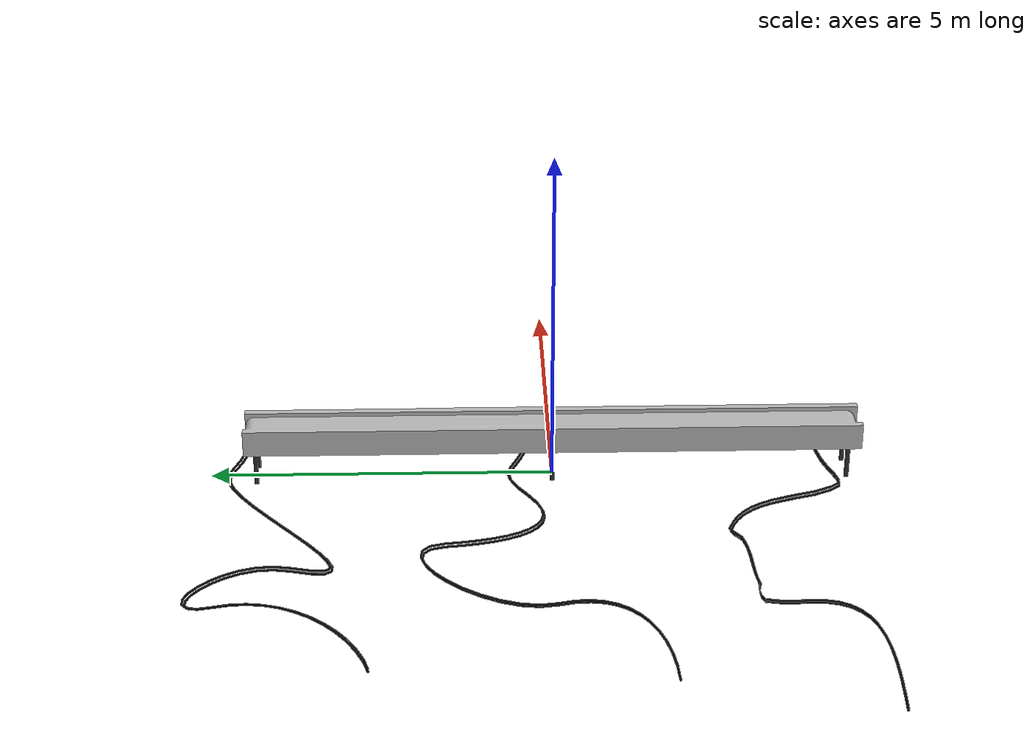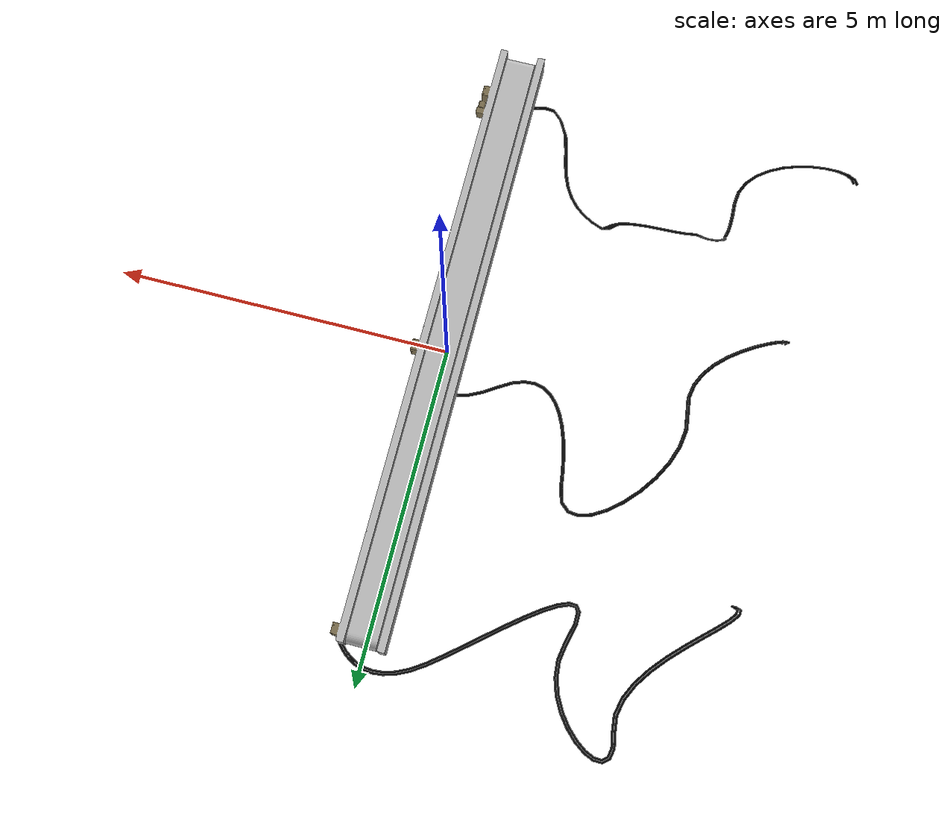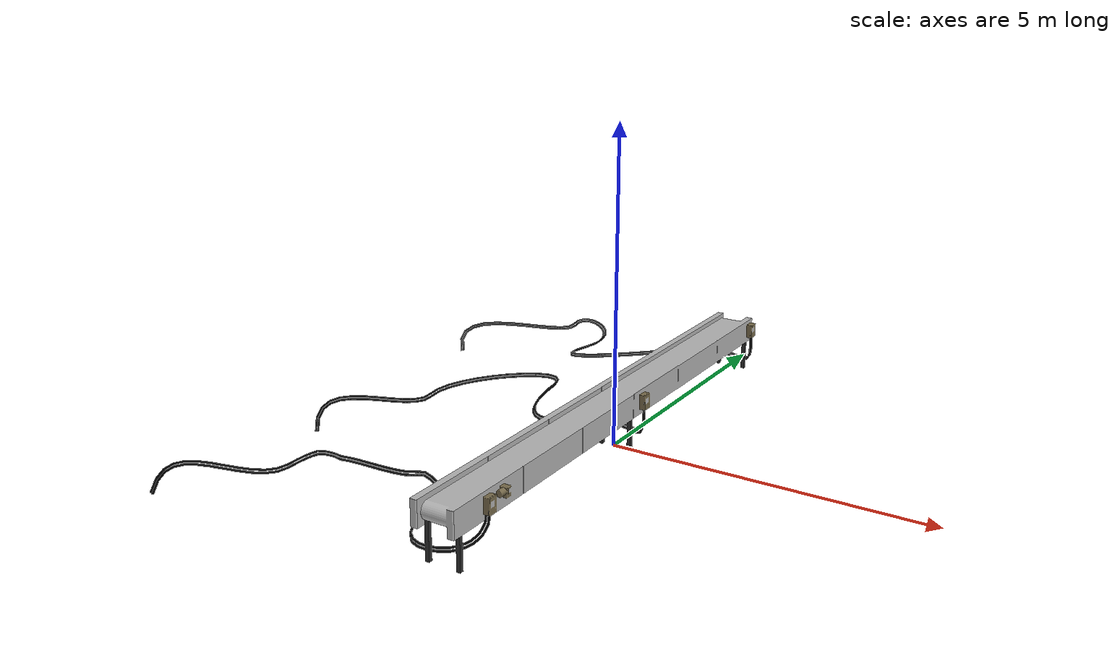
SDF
<?xml version="1.0" ?>
<sdf version="1.6">
    <model name="conveyor_belt">
      <!-- Fixed frame that can be used to refer to the belt's global pose -->
      <model name="conveyor_belt_fixed">
        <static>true</static>
        <link name="link">
          <visual name="visual">
                <geometry>
                    <mesh>
                      <scale>1 1 1</scale>
                      <uri>model://conveyor_belt/meshes/conveyor.dae</uri>
                    </mesh>
                </geometry>
	  </visual>
          <collision name="collision">
                <geometry>
                    <mesh>
                      <scale>1 1 1</scale>
                      <uri>model://conveyor_belt/meshes/conveyor_nobase.dae</uri>
                    </mesh>
                </geometry>
	  </collision>
	</link>
      </model>

      <!-- Moving component that extends and resets a prismatic joint -->
      <model name="conveyor_belt_moving">
        <allow_auto_disable>0</allow_auto_disable>
        <static>false</static>
        <pose>0 0 0.75 0 0 -1.57079</pose>
        <link name="belt">
          <pose>-0.2 0 0 0 0 0</pose>
          <inertial>
            <inertia>
              <ixx>3.8185</ixx>
              <ixy>0</ixy>
              <ixz>0</ixz>
              <iyy>1781.5</iyy>
              <iyz>0</iyz>
              <izz>1784.72</izz>
            </inertia>
            <mass>100</mass>
          </inertial>

          <collision name="belt_collision">
            <geometry>
              <box>
                <size>9 0.42 .25</size>
              </box>
            </geometry>
            <surface>
              <friction>
                <ode>
                  <mu>1.0</mu>
                  <mu2>1.0</mu2>
                </ode>
                <torsional>
                  <coefficient>1000.0</coefficient>
                  <patch_radius>0.1</patch_radius>
                </torsional>
              </friction>
            </surface>
          </collision>
        </link>
      </model>

      <joint name="belt_joint" type="prismatic">
        <parent>conveyor_belt_fixed::link</parent>
        <child>conveyor_belt_moving::belt</child>
        <axis>
          <xyz>1 0 0</xyz>
          <limit>
            <lower>0</lower>
            <upper>1.0</upper>
          </limit>
        </axis>
      </joint>

      <plugin name="conveyor_belt_plugin" filename="libROSConveyorBeltPlugin.so">
        <robot_namespace>/ariac</robot_namespace>
        <enable_topic>/ariac/conveyor_enable</enable_topic>
        <population_rate_modifier_topic>/ariac/population/rate_modifier</population_rate_modifier_topic>
        <link>conveyor_belt::conveyor_belt_moving::belt</link>
        <power>0</power>
        <update_rate>10</update_rate>
      </plugin>
    </model>
</sdf>
